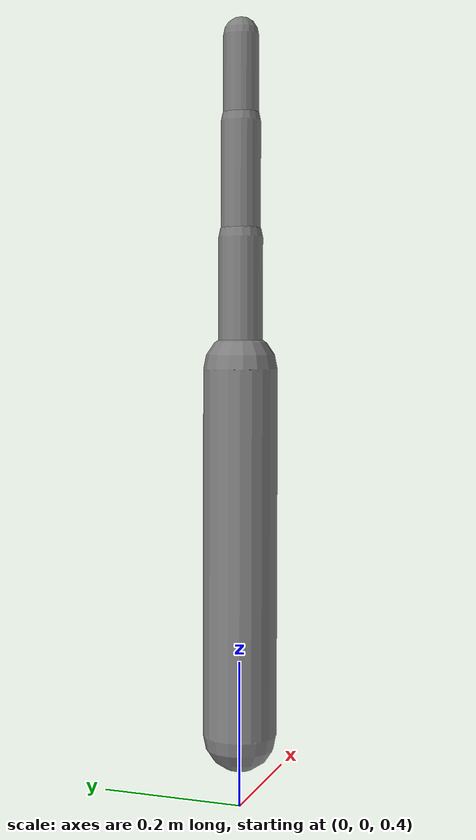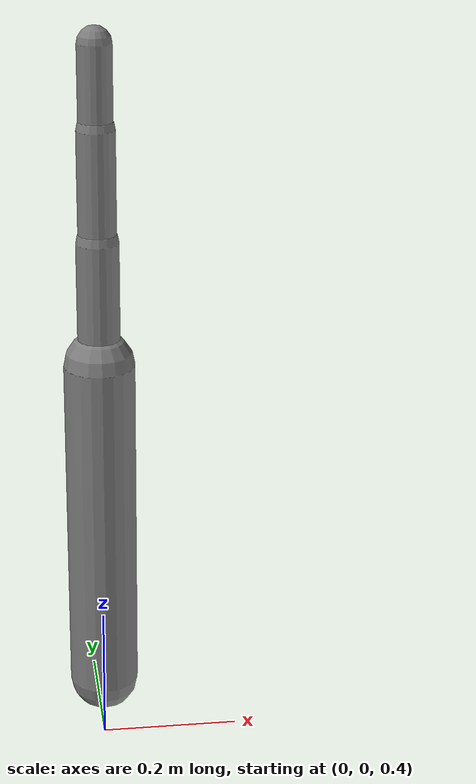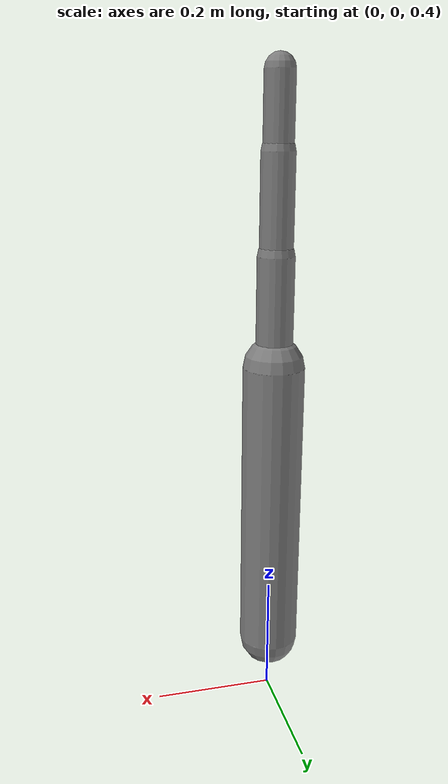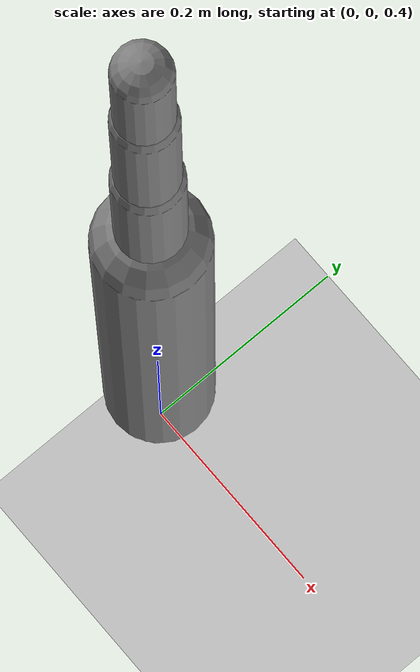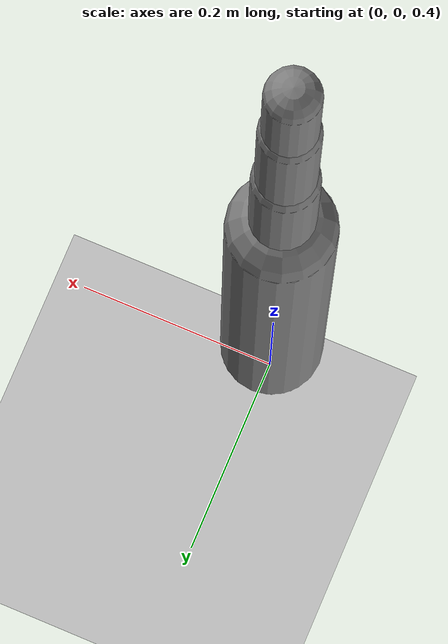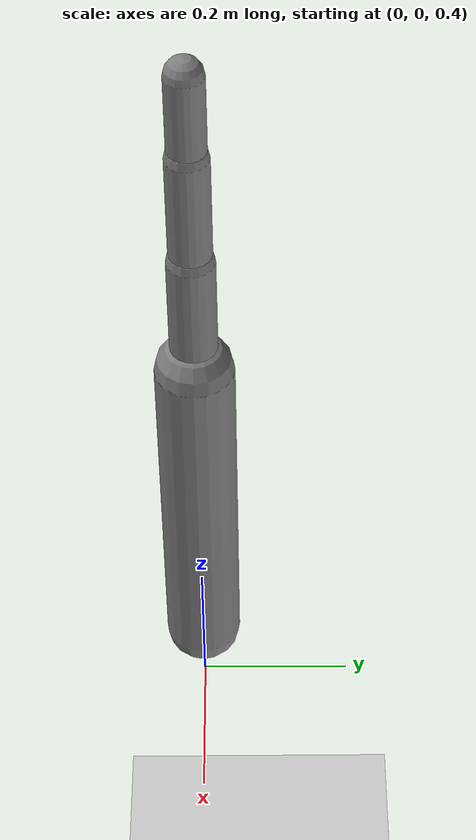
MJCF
<?xml version='1.0' encoding='UTF-8'?>
<mujoco model="RobotModel">
  <option gravity="0 0 -9.81" timestep="0.002" solver="CG" iterations="500" integrator="Euler"/>
  <worldbody>
    <geom name="Floor" type="plane" size="10 10 0.1" pos="0 0 0" rgba="0.8 0.8 0.8 1"/>
    <body name="Limb0" pos="0 0 0.5">
      <geom type="capsule" fromto="0 0 0 0 0 0.5" size="0.05" density="1000" contype="1" conaffinity="1"/>
      <body name="Limb0_abc03048" pos="0 0 0.5">
        <geom type="capsule" fromto="0 0 0 0 0 0.15881387006546638" size="0.023489639615894446" density="500.0" contype="1" conaffinity="1"/>
        <joint name="Joint_Limb0_Limb0_abc03048_0" type="hinge" axis="0 1 0" range="-60 60"/>
      </body>
      <body name="Limb1_abc03048" pos="0 0 0.5">
        <geom type="capsule" fromto="0 0 0 0 0 0.15908050130928564" size="0.02562425694150969" density="500.0" contype="1" conaffinity="1"/>
        <body name="Limb2_abc03048" pos="0 0 0.15908050130928564">
          <geom type="capsule" fromto="0 0 0 0 0 0.1719159437331125" size="0.026567803335375104" density="500.0" contype="1" conaffinity="1"/>
          <body name="Limb3_abc03048" pos="0 0 0.1719159437331125">
            <geom type="capsule" fromto="0 0 0 0 0 0.1132517050284302" size="0.02367596636250335" density="500.0" contype="1" conaffinity="1"/>
            <joint name="Joint_Limb2_abc03048_Limb3_abc03048_0" type="hinge" axis="0 1 0" range="-60 60"/>
          </body>
          <joint name="Joint_Limb1_abc03048_Limb2_abc03048_0" type="hinge" axis="0 1 0" range="-60 60"/>
        </body>
        <joint name="Joint_Limb0_Limb1_abc03048_0" type="hinge" axis="1 0 0" range="-60 60"/>
      </body>
      <body name="Limb4_abc03048" pos="0 0 0.5">
        <geom type="capsule" fromto="0 0 0 0 0 0.17673226137796816" size="0.02973033124191071" density="500.0" contype="1" conaffinity="1"/>
        <body name="Limb5_abc03048" pos="0 0 0.17673226137796816">
          <geom type="capsule" fromto="0 0 0 0 0 0.1548239045421313" size="0.021949942466364093" density="500.0" contype="1" conaffinity="1"/>
          <joint name="Joint_Limb4_abc03048_Limb5_abc03048_0" type="hinge" axis="0 1 0" range="-60 60"/>
        </body>
        <joint name="Joint_Limb0_Limb4_abc03048_0" type="hinge" axis="1 0 0" range="-60 60"/>
      </body>
    </body>
  </worldbody>
  <actuator>
    <position name="position_Actuator_Joint_Limb0_Limb0_abc03048_0" joint="Joint_Limb0_Limb0_abc03048_0" gear="1.0"/>
    <position name="position_Actuator_Joint_Limb0_Limb1_abc03048_0" joint="Joint_Limb0_Limb1_abc03048_0" gear="1.0"/>
    <position name="position_Actuator_Joint_Limb1_abc03048_Limb2_abc03048_0" joint="Joint_Limb1_abc03048_Limb2_abc03048_0" gear="1.0"/>
    <position name="position_Actuator_Joint_Limb2_abc03048_Limb3_abc03048_0" joint="Joint_Limb2_abc03048_Limb3_abc03048_0" gear="1.0"/>
    <position name="position_Actuator_Joint_Limb0_Limb4_abc03048_0" joint="Joint_Limb0_Limb4_abc03048_0" gear="1.0"/>
    <position name="position_Actuator_Joint_Limb4_abc03048_Limb5_abc03048_0" joint="Joint_Limb4_abc03048_Limb5_abc03048_0" gear="1.0"/>
  </actuator>
</mujoco>
